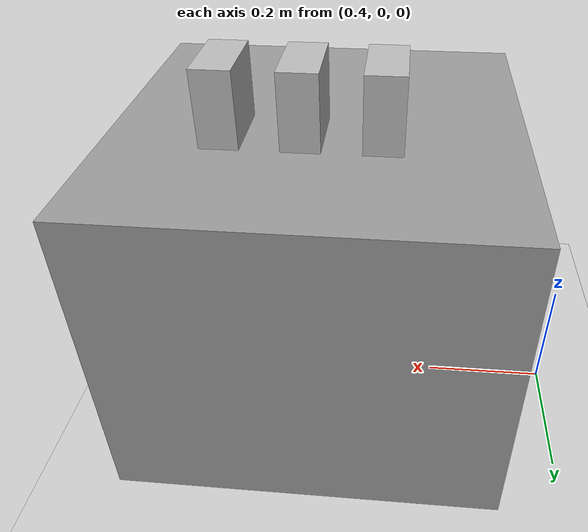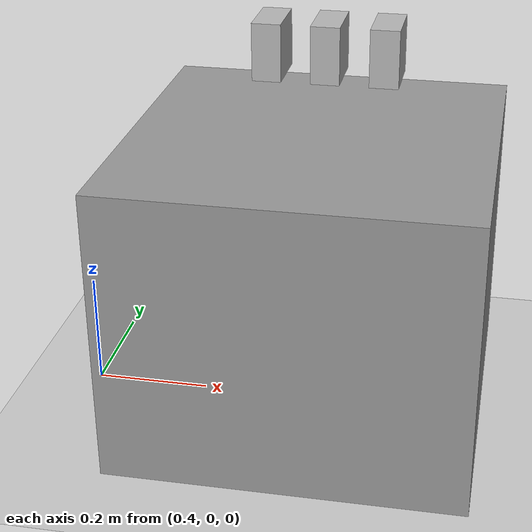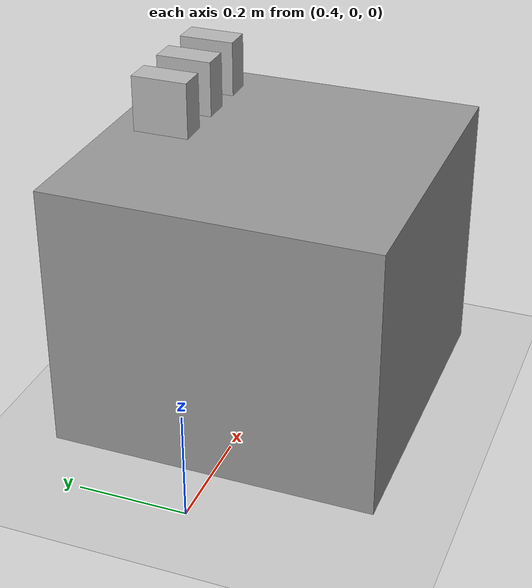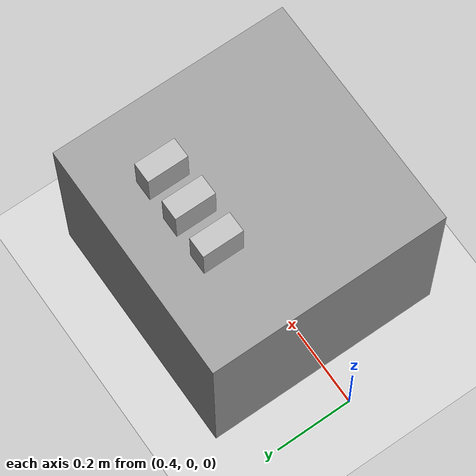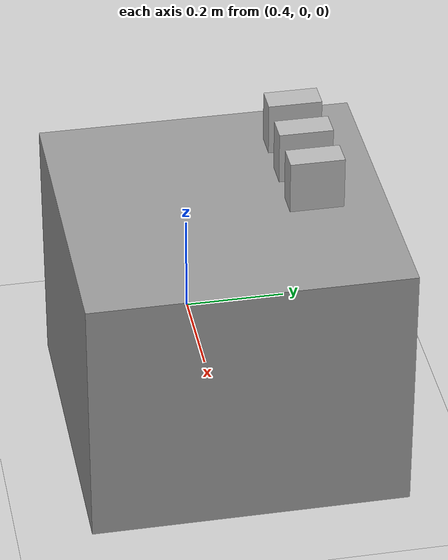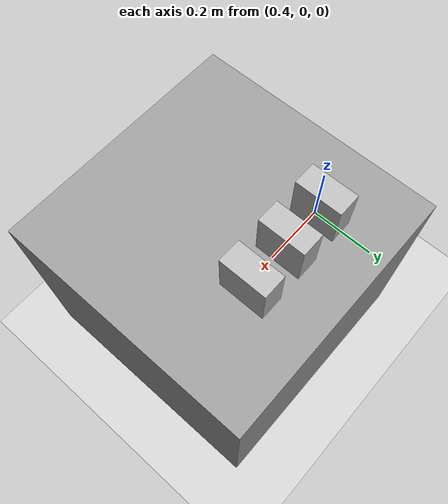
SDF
<?xml version="1.0" ?>

<sdf version="1.6">
  <world name="ur10_pick_and_place">

    <!-- A global light source -->
    <include>
      <uri>model://sun</uri>
    </include>

    <!-- A ground plane -->
    <include>
      <uri>model://ground_plane</uri>
    </include>

    <!-- A box -->
    <include>
      <uri>model://box</uri>
      <pose>0.8 0 0.26 0 0 0</pose>
    </include>

    <!-- A row of blocks -->
    <include>
      <name>block1</name>
      <uri>model://block</uri>
      <pose>0.7 0.15 0.61 0 0 0</pose>
    </include>

    <include>
      <name>block2</name>
      <uri>model://block</uri>
      <pose>0.8 0.15 0.61 0 0 0</pose>
    </include>

    <include>
      <name>block3</name>
      <uri>model://block</uri>
      <pose>0.9 0.15 0.61 0 0 0</pose>
    </include>

  </world>
</sdf>

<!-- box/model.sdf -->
<sdf version='1.6'>
  <model name='box'>
    <link name='link'>
      <pose frame=''>0 0 0 0 -0 0</pose>
      <inertial>
        <mass>1</mass>
        <inertia>
          <ixx>0.166667</ixx>
          <ixy>0</ixy>
          <ixz>0</ixz>
          <iyy>0.166667</iyy>
          <iyz>0</iyz>
          <izz>0.166667</izz>
        </inertia>
        <pose frame=''>0 0 0 0 -0 0</pose>
      </inertial>
      <self_collide>0</self_collide>
      <kinematic>0</kinematic>
      <gravity>1</gravity>
      <visual name='visual'>
        <geometry>
          <box>
            <size>0.6 0.6 0.5</size>
          </box>
        </geometry>
        <material>
          <script>
            <name>Gazebo/Grey</name>
            <uri>file://media/materials/scripts/gazebo.material</uri>
          </script>
          <ambient>0.3 0.3 0.3 1</ambient>
          <diffuse>0.7 0.7 0.7 1</diffuse>
          <specular>0.01 0.01 0.01 1</specular>
          <emissive>0 0 0 1</emissive>
          <shader type='vertex'>
            <normal_map>__default__</normal_map>
          </shader>
        </material>
        <pose frame=''>0 0 0 0 -0 0</pose>
        <cast_shadows>1</cast_shadows>
        <transparency>0</transparency>
      </visual>
      <collision name='collision'>
        <laser_retro>0</laser_retro>
        <max_contacts>10</max_contacts>
        <pose frame=''>0 0 0 0 -0 0</pose>
        <geometry>
          <box>
            <size>0.6 0.6 0.5</size>
          </box>
        </geometry>
        <surface>
          <friction>
            <ode>
              <mu>1</mu>
              <mu2>1</mu2>
              <fdir1>0 0 0</fdir1>
              <slip1>0</slip1>
              <slip2>0</slip2>
            </ode>
            <torsional>
              <coefficient>1</coefficient>
              <patch_radius>0</patch_radius>
              <surface_radius>0</surface_radius>
              <use_patch_radius>1</use_patch_radius>
              <ode>
                <slip>0</slip>
              </ode>
            </torsional>
          </friction>
          <bounce>
            <restitution_coefficient>0</restitution_coefficient>
            <threshold>1e+06</threshold>
          </bounce>
          <contact>
            <collide_without_contact>0</collide_without_contact>
            <collide_without_contact_bitmask>1</collide_without_contact_bitmask>
            <collide_bitmask>1</collide_bitmask>
            <ode>
              <soft_cfm>0</soft_cfm>
              <soft_erp>0.2</soft_erp>
              <kp>1e+13</kp>
              <kd>1</kd>
              <max_vel>0.01</max_vel>
              <min_depth>0</min_depth>
            </ode>
            <bullet>
              <split_impulse>1</split_impulse>
              <split_impulse_penetration_threshold>-0.01</split_impulse_penetration_threshold>
              <soft_cfm>0</soft_cfm>
              <soft_erp>0.2</soft_erp>
              <kp>1e+13</kp>
              <kd>1</kd>
            </bullet>
          </contact>
        </surface>
      </collision>
    </link>
    <static>1</static>
    <allow_auto_disable>1</allow_auto_disable>
  </model>
</sdf>

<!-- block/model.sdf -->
<sdf version="1.4">
<model name="block">
  <pose>0 0 0 0 0 0</pose>
  <static>false</static>
    <link name="link">
      <inertial>
        <mass>1.0</mass>
        <inertia> <!-- inertias are tricky to compute -->
          <!-- http://gazebosim.org/tutorials?tut=inertia&cat=build_robot -->
          <ixx>0.00166</ixx>       <!-- for a box: ixx = 0.083 * mass * (y*y + z*z) -->
          <ixy>0.0</ixy>         <!-- for a box: ixy = 0 -->
          <ixz>0.0</ixz>         <!-- for a box: ixz = 0 -->
          <iyy>0.0010375</iyy>       <!-- for a box: iyy = 0.083 * mass * (x*x + z*z) -->
          <iyz>0.0</iyz>         <!-- for a box: iyz = 0 -->
          <izz>0.0010375</izz>       <!-- for a box: izz = 0.083 * mass * (x*x + y*y) -->
        </inertia>
      </inertial>
      <collision name="collision">
        <geometry>
          <box>
            <size>0.05 0.1 0.1</size>
          </box>
        </geometry>
      </collision>
      <visual name="visual">
        <geometry>
          <box>
            <size>0.05 0.1 0.1</size>
          </box>
        </geometry>
      </visual>
    </link>
  </model>
</sdf>
